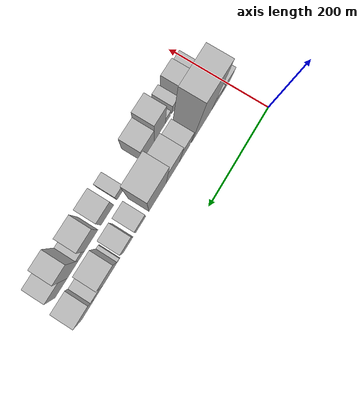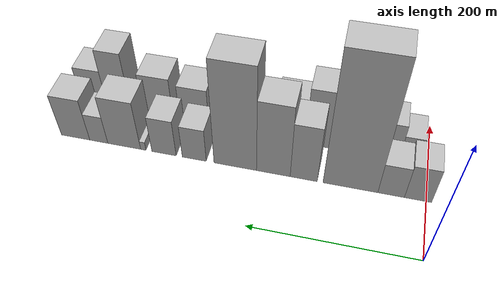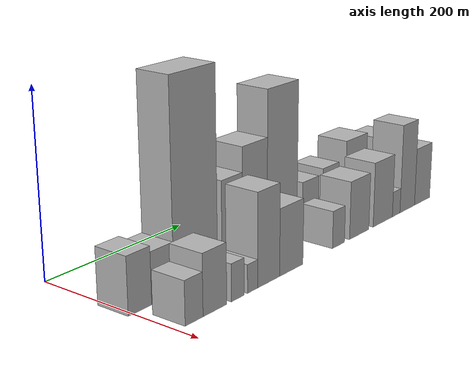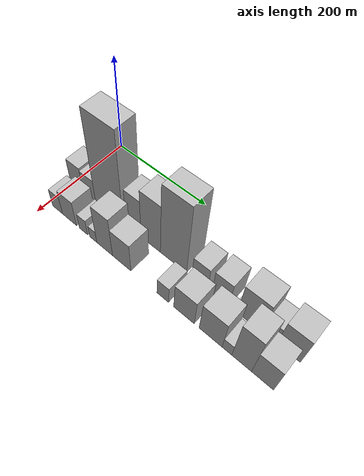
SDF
<sdf version="1.6">
 <world name="default">
  <model name="building_11">
   <static>1</static>
   <pose>100.0000 9.8752 0 0.000000 0.000000 0.000000</pose>
   <link name="link">
    <pose>0 0 30.00 0 0 0</pose>
    <collision name="collision"><geometry><box><size>40.0000 31.6250 60.0000</size></box></geometry></collision>
    <visual name="visual">
     <cast_shadows>0</cast_shadows>
     <geometry><box><size>40.0000 31.6250 60.0000</size></box></geometry>
     <material>
      <script>
       <uri>model://HANNAS_wall/materials/scripts</uri>
       <uri>model://HANNAS_wall/materials/textures</uri>
       <name>vrc/HANNAS_wall</name>
      </script>
     </material>
    </visual>
   </link>
  </model>
  <model name="building_12">
   <static>1</static>
   <pose>100.0000 41.3546 0 0.000000 0.000000 0.000000</pose>
   <link name="link">
    <pose>0 0 27.00 0 0 0</pose>
    <collision name="collision"><geometry><box><size>40.0000 31.3338 54.0000</size></box></geometry></collision>
    <visual name="visual">
     <cast_shadows>0</cast_shadows>
     <geometry><box><size>40.0000 31.3338 54.0000</size></box></geometry>
     <material>
      <script>
       <uri>model://HANNAS_wall/materials/scripts</uri>
       <uri>model://HANNAS_wall/materials/textures</uri>
       <name>vrc/HANNAS_wall</name>
      </script>
     </material>
    </visual>
   </link>
  </model>
  <model name="building_13">
   <static>1</static>
   <pose>100.0000 89.9207 0 0.000000 0.000000 0.000000</pose>
   <link name="link">
    <pose>0 0 108.00 0 0 0</pose>
    <collision name="collision"><geometry><box><size>40.0000 65.7983 216.0000</size></box></geometry></collision>
    <visual name="visual">
     <cast_shadows>0</cast_shadows>
     <geometry><box><size>40.0000 65.7983 216.0000</size></box></geometry>
     <material>
      <script>
       <uri>model://HANNAS_wall/materials/scripts</uri>
       <uri>model://HANNAS_wall/materials/textures</uri>
       <name>vrc/HANNAS_wall</name>
      </script>
     </material>
    </visual>
   </link>
  </model>
  <model name="building_14">
   <static>1</static>
   <pose>100.0000 146.4319 0 0.000000 0.000000 0.000000</pose>
   <link name="link">
    <pose>0 0 48.00 0 0 0</pose>
    <collision name="collision"><geometry><box><size>40.0000 33.2240 96.0000</size></box></geometry></collision>
    <visual name="visual">
     <cast_shadows>0</cast_shadows>
     <geometry><box><size>40.0000 33.2240 96.0000</size></box></geometry>
     <material>
      <script>
       <uri>model://HANNAS_wall/materials/scripts</uri>
       <uri>model://HANNAS_wall/materials/textures</uri>
       <name>vrc/HANNAS_wall</name>
      </script>
     </material>
    </visual>
   </link>
  </model>
  <model name="building_15">
   <static>1</static>
   <pose>100.0000 184.0171 0 0.000000 0.000000 0.000000</pose>
   <link name="link">
    <pose>0 0 61.50 0 0 0</pose>
    <collision name="collision"><geometry><box><size>40.0000 41.9464 123.0000</size></box></geometry></collision>
    <visual name="visual">
     <cast_shadows>0</cast_shadows>
     <geometry><box><size>40.0000 41.9464 123.0000</size></box></geometry>
     <material>
      <script>
       <uri>model://HANNAS_wall/materials/scripts</uri>
       <uri>model://HANNAS_wall/materials/textures</uri>
       <name>vrc/HANNAS_wall</name>
      </script>
     </material>
    </visual>
   </link>
  </model>
  <model name="building_16">
   <static>1</static>
   <pose>100.0000 231.9052 0 0.000000 0.000000 0.000000</pose>
   <link name="link">
    <pose>0 0 87.00 0 0 0</pose>
    <collision name="collision"><geometry><box><size>40.0000 53.8299 174.0000</size></box></geometry></collision>
    <visual name="visual">
     <cast_shadows>0</cast_shadows>
     <geometry><box><size>40.0000 53.8299 174.0000</size></box></geometry>
     <material>
      <script>
       <uri>model://HANNAS_wall/materials/scripts</uri>
       <uri>model://HANNAS_wall/materials/textures</uri>
       <name>vrc/HANNAS_wall</name>
      </script>
     </material>
    </visual>
   </link>
  </model>
  <model name="building_17">
   <static>1</static>
   <pose>100.0000 284.2796 0 0.000000 0.000000 0.000000</pose>
   <link name="link">
    <pose>0 0 28.50 0 0 0</pose>
    <collision name="collision"><geometry><box><size>40.0000 30.9188 57.0000</size></box></geometry></collision>
    <visual name="visual">
     <cast_shadows>0</cast_shadows>
     <geometry><box><size>40.0000 30.9188 57.0000</size></box></geometry>
     <material>
      <script>
       <uri>model://HANNAS_wall/materials/scripts</uri>
       <uri>model://HANNAS_wall/materials/textures</uri>
       <name>vrc/HANNAS_wall</name>
      </script>
     </material>
    </visual>
   </link>
  </model>
  <model name="building_18">
   <static>1</static>
   <pose>100.0000 323.6369 0 0.000000 0.000000 0.000000</pose>
   <link name="link">
    <pose>0 0 31.50 0 0 0</pose>
    <collision name="collision"><geometry><box><size>40.0000 31.7958 63.0000</size></box></geometry></collision>
    <visual name="visual">
     <cast_shadows>0</cast_shadows>
     <geometry><box><size>40.0000 31.7958 63.0000</size></box></geometry>
     <material>
      <script>
       <uri>model://HANNAS_wall/materials/scripts</uri>
       <uri>model://HANNAS_wall/materials/textures</uri>
       <name>vrc/HANNAS_wall</name>
      </script>
     </material>
    </visual>
   </link>
  </model>
  <model name="building_19">
   <static>1</static>
   <pose>100.0000 351.0465 0 0.000000 0.000000 0.000000</pose>
   <link name="link">
    <pose>0 0 7.50 0 0 0</pose>
    <collision name="collision"><geometry><box><size>40.0000 7.0234 15.0000</size></box></geometry></collision>
    <visual name="visual">
     <cast_shadows>0</cast_shadows>
     <geometry><box><size>40.0000 7.0234 15.0000</size></box></geometry>
     <material>
      <script>
       <uri>model://HANNAS_wall/materials/scripts</uri>
       <uri>model://HANNAS_wall/materials/textures</uri>
       <name>vrc/HANNAS_wall</name>
      </script>
     </material>
    </visual>
   </link>
  </model>
  <model name="building_20">
   <static>1</static>
   <pose>100.0000 376.5104 0 0.000000 0.000000 0.000000</pose>
   <link name="link">
    <pose>0 0 42.00 0 0 0</pose>
    <collision name="collision"><geometry><box><size>40.0000 43.9043 84.0000</size></box></geometry></collision>
    <visual name="visual">
     <cast_shadows>0</cast_shadows>
     <geometry><box><size>40.0000 43.9043 84.0000</size></box></geometry>
     <material>
      <script>
       <uri>model://HANNAS_wall/materials/scripts</uri>
       <uri>model://HANNAS_wall/materials/textures</uri>
       <name>vrc/HANNAS_wall</name>
      </script>
     </material>
    </visual>
   </link>
  </model>
  <model name="building_21">
   <static>1</static>
   <pose>100.0000 410.7275 0 0.000000 0.000000 0.000000</pose>
   <link name="link">
    <pose>0 0 24.00 0 0 0</pose>
    <collision name="collision"><geometry><box><size>40.0000 24.5299 48.0000</size></box></geometry></collision>
    <visual name="visual">
     <cast_shadows>0</cast_shadows>
     <geometry><box><size>40.0000 24.5299 48.0000</size></box></geometry>
     <material>
      <script>
       <uri>model://HANNAS_wall/materials/scripts</uri>
       <uri>model://HANNAS_wall/materials/textures</uri>
       <name>vrc/HANNAS_wall</name>
      </script>
     </material>
    </visual>
   </link>
  </model>
  <model name="building_22">
   <static>1</static>
   <pose>100.0000 442.3982 0 0.000000 0.000000 0.000000</pose>
   <link name="link">
    <pose>0 0 36.00 0 0 0</pose>
    <collision name="collision"><geometry><box><size>40.0000 38.8115 72.0000</size></box></geometry></collision>
    <visual name="visual">
     <cast_shadows>0</cast_shadows>
     <geometry><box><size>40.0000 38.8115 72.0000</size></box></geometry>
     <material>
      <script>
       <uri>model://HANNAS_wall/materials/scripts</uri>
       <uri>model://HANNAS_wall/materials/textures</uri>
       <name>vrc/HANNAS_wall</name>
      </script>
     </material>
    </visual>
   </link>
  </model>
  <model name="building_34">
   <static>1</static>
   <pose>155.0000 23.3013 0 0.000000 0.000000 0.000000</pose>
   <link name="link">
    <pose>0 0 22.50 0 0 0</pose>
    <collision name="collision"><geometry><box><size>40.0000 24.9613 45.0000</size></box></geometry></collision>
    <visual name="visual">
     <cast_shadows>0</cast_shadows>
     <geometry><box><size>40.0000 24.9613 45.0000</size></box></geometry>
     <material>
      <script>
       <uri>model://HANNAS_wall/materials/scripts</uri>
       <uri>model://HANNAS_wall/materials/textures</uri>
       <name>vrc/HANNAS_wall</name>
      </script>
     </material>
    </visual>
   </link>
  </model>
  <model name="building_35">
   <static>1</static>
   <pose>155.0000 52.9590 0 0.000000 0.000000 0.000000</pose>
   <link name="link">
    <pose>0 0 31.50 0 0 0</pose>
    <collision name="collision"><geometry><box><size>40.0000 34.3541 63.0000</size></box></geometry></collision>
    <visual name="visual">
     <cast_shadows>0</cast_shadows>
     <geometry><box><size>40.0000 34.3541 63.0000</size></box></geometry>
     <material>
      <script>
       <uri>model://HANNAS_wall/materials/scripts</uri>
       <uri>model://HANNAS_wall/materials/textures</uri>
       <name>vrc/HANNAS_wall</name>
      </script>
     </material>
    </visual>
   </link>
  </model>
  <model name="building_36">
   <static>1</static>
   <pose>155.0000 86.9186 0 0.000000 0.000000 0.000000</pose>
   <link name="link">
    <pose>0 0 19.50 0 0 0</pose>
    <collision name="collision"><geometry><box><size>40.0000 19.5653 39.0000</size></box></geometry></collision>
    <visual name="visual">
     <cast_shadows>0</cast_shadows>
     <geometry><box><size>40.0000 19.5653 39.0000</size></box></geometry>
     <material>
      <script>
       <uri>model://HANNAS_wall/materials/scripts</uri>
       <uri>model://HANNAS_wall/materials/textures</uri>
       <name>vrc/HANNAS_wall</name>
      </script>
     </material>
    </visual>
   </link>
  </model>
  <model name="building_37">
   <static>1</static>
   <pose>155.0000 109.8330 0 0.000000 0.000000 0.000000</pose>
   <link name="link">
    <pose>0 0 15.00 0 0 0</pose>
    <collision name="collision"><geometry><box><size>40.0000 16.2634 30.0000</size></box></geometry></collision>
    <visual name="visual">
     <cast_shadows>0</cast_shadows>
     <geometry><box><size>40.0000 16.2634 30.0000</size></box></geometry>
     <material>
      <script>
       <uri>model://HANNAS_wall/materials/scripts</uri>
       <uri>model://HANNAS_wall/materials/textures</uri>
       <name>vrc/HANNAS_wall</name>
      </script>
     </material>
    </visual>
   </link>
  </model>
  <model name="building_38">
   <static>1</static>
   <pose>155.0000 135.7820 0 0.000000 0.000000 0.000000</pose>
   <link name="link">
    <pose>0 0 49.50 0 0 0</pose>
    <collision name="collision"><geometry><box><size>40.0000 35.6346 99.0000</size></box></geometry></collision>
    <visual name="visual">
     <cast_shadows>0</cast_shadows>
     <geometry><box><size>40.0000 35.6346 99.0000</size></box></geometry>
     <material>
      <script>
       <uri>model://HANNAS_wall/materials/scripts</uri>
       <uri>model://HANNAS_wall/materials/textures</uri>
       <name>vrc/HANNAS_wall</name>
      </script>
     </material>
    </visual>
   </link>
  </model>
  <model name="building_39">
   <static>1</static>
   <pose>155.0000 173.5366 0 0.000000 0.000000 0.000000</pose>
   <link name="link">
    <pose>0 0 36.00 0 0 0</pose>
    <collision name="collision"><geometry><box><size>40.0000 39.8746 72.0000</size></box></geometry></collision>
    <visual name="visual">
     <cast_shadows>0</cast_shadows>
     <geometry><box><size>40.0000 39.8746 72.0000</size></box></geometry>
     <material>
      <script>
       <uri>model://HANNAS_wall/materials/scripts</uri>
       <uri>model://HANNAS_wall/materials/textures</uri>
       <name>vrc/HANNAS_wall</name>
      </script>
     </material>
    </visual>
   </link>
  </model>
  <model name="building_40">
   <static>1</static>
   <pose>155.0000 259.0171 0 0.000000 0.000000 0.000000</pose>
   <link name="link">
    <pose>0 0 21.00 0 0 0</pose>
    <collision name="collision"><geometry><box><size>40.0000 23.0288 42.0000</size></box></geometry></collision>
    <visual name="visual">
     <cast_shadows>0</cast_shadows>
     <geometry><box><size>40.0000 23.0288 42.0000</size></box></geometry>
     <material>
      <script>
       <uri>model://HANNAS_wall/materials/scripts</uri>
       <uri>model://HANNAS_wall/materials/textures</uri>
       <name>vrc/HANNAS_wall</name>
      </script>
     </material>
    </visual>
   </link>
  </model>
  <model name="building_41">
   <static>1</static>
   <pose>155.0000 299.9711 0 0.000000 0.000000 0.000000</pose>
   <link name="link">
    <pose>0 0 33.00 0 0 0</pose>
    <collision name="collision"><geometry><box><size>40.0000 38.8792 66.0000</size></box></geometry></collision>
    <visual name="visual">
     <cast_shadows>0</cast_shadows>
     <geometry><box><size>40.0000 38.8792 66.0000</size></box></geometry>
     <material>
      <script>
       <uri>model://HANNAS_wall/materials/scripts</uri>
       <uri>model://HANNAS_wall/materials/textures</uri>
       <name>vrc/HANNAS_wall</name>
      </script>
     </material>
    </visual>
   </link>
  </model>
  <model name="building_42">
   <static>1</static>
   <pose>155.0000 349.0415 0 0.000000 0.000000 0.000000</pose>
   <link name="link">
    <pose>0 0 37.50 0 0 0</pose>
    <collision name="collision"><geometry><box><size>40.0000 41.2617 75.0000</size></box></geometry></collision>
    <visual name="visual">
     <cast_shadows>0</cast_shadows>
     <geometry><box><size>40.0000 41.2617 75.0000</size></box></geometry>
     <material>
      <script>
       <uri>model://HANNAS_wall/materials/scripts</uri>
       <uri>model://HANNAS_wall/materials/textures</uri>
       <name>vrc/HANNAS_wall</name>
      </script>
     </material>
    </visual>
   </link>
  </model>
  <model name="building_43">
   <static>1</static>
   <pose>155.0000 378.0566 0 0.000000 0.000000 0.000000</pose>
   <link name="link">
    <pose>0 0 15.00 0 0 0</pose>
    <collision name="collision"><geometry><box><size>40.0000 16.7684 30.0000</size></box></geometry></collision>
    <visual name="visual">
     <cast_shadows>0</cast_shadows>
     <geometry><box><size>40.0000 16.7684 30.0000</size></box></geometry>
     <material>
      <script>
       <uri>model://HANNAS_wall/materials/scripts</uri>
       <uri>model://HANNAS_wall/materials/textures</uri>
       <name>vrc/HANNAS_wall</name>
      </script>
     </material>
    </visual>
   </link>
  </model>
  <model name="building_44">
   <static>1</static>
   <pose>155.0000 403.0473 0 0.000000 0.000000 0.000000</pose>
   <link name="link">
    <pose>0 0 52.50 0 0 0</pose>
    <collision name="collision"><geometry><box><size>40.0000 33.2130 105.0000</size></box></geometry></collision>
    <visual name="visual">
     <cast_shadows>0</cast_shadows>
     <geometry><box><size>40.0000 33.2130 105.0000</size></box></geometry>
     <material>
      <script>
       <uri>model://HANNAS_wall/materials/scripts</uri>
       <uri>model://HANNAS_wall/materials/textures</uri>
       <name>vrc/HANNAS_wall</name>
      </script>
     </material>
    </visual>
   </link>
  </model>
  <model name="building_45">
   <static>1</static>
   <pose>155.0000 437.5576 0 0.000000 0.000000 0.000000</pose>
   <link name="link">
    <pose>0 0 34.50 0 0 0</pose>
    <collision name="collision"><geometry><box><size>40.0000 35.8076 69.0000</size></box></geometry></collision>
    <visual name="visual">
     <cast_shadows>0</cast_shadows>
     <geometry><box><size>40.0000 35.8076 69.0000</size></box></geometry>
     <material>
      <script>
       <uri>model://HANNAS_wall/materials/scripts</uri>
       <uri>model://HANNAS_wall/materials/textures</uri>
       <name>vrc/HANNAS_wall</name>
      </script>
     </material>
    </visual>
   </link>
  </model>
 </world>
</sdf>
